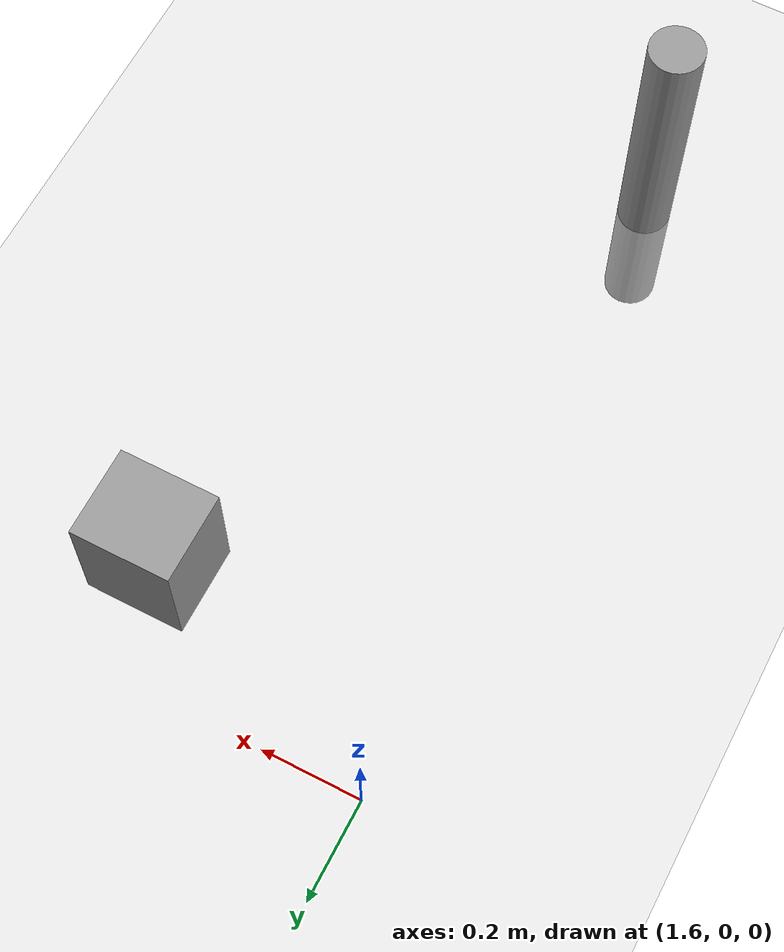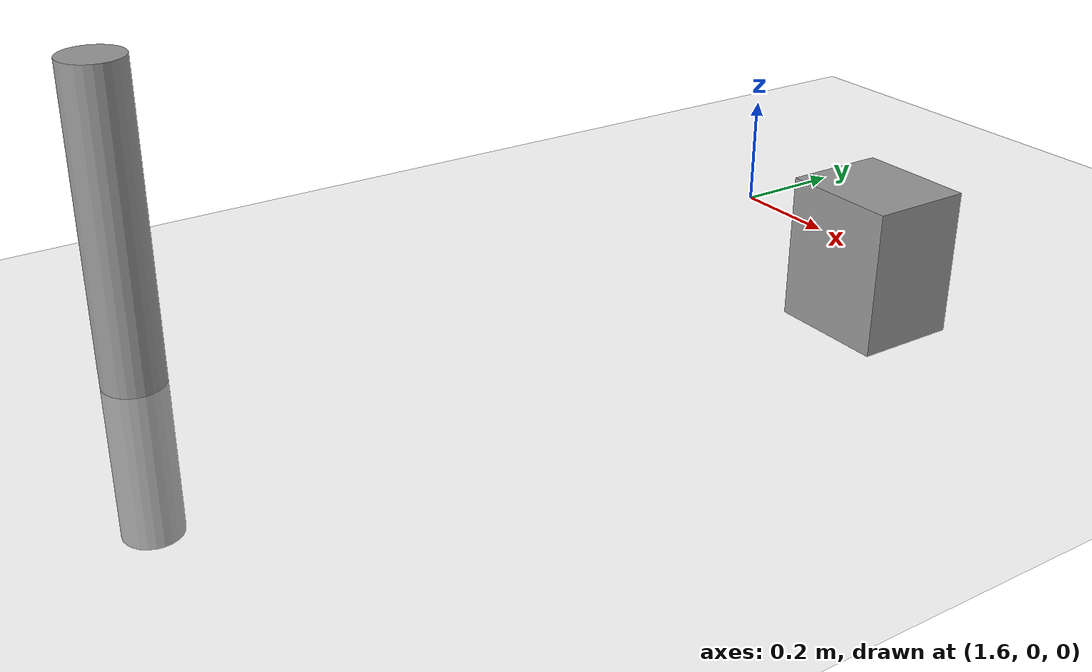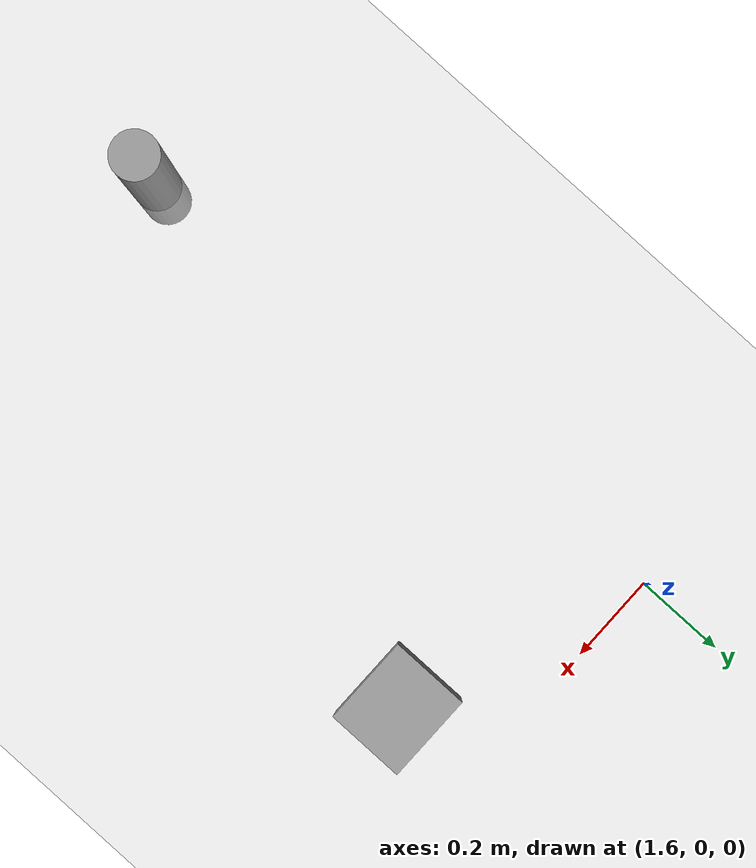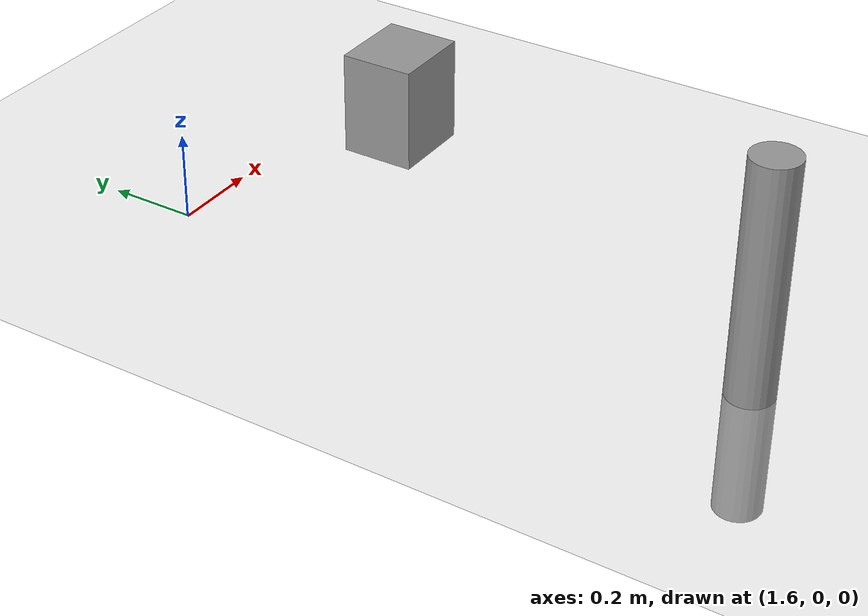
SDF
<sdf version="1.7">
 <world name="default">
  <light name="sun" type="directional">
   <pose>0 0 10 0 -0 0</pose>
   <diffuse>0.8 0.8 0.8 1</diffuse>
   <specular>0.2 0.2 0.2 1</specular>
   <attenuation>
    <range>1000</range>
    <constant>0.9</constant>
    <linear>0.01</linear>
    <quadratic>0.001</quadratic>
   </attenuation>
   <direction>-0.5 0.1 -0.9</direction>
   <spot><inner_angle>0</inner_angle><outer_angle>0</outer_angle><falloff>0</falloff></spot>
  </light>
  <model name="ground_plane">
   <static>1</static>
   <link name="link">
    <collision name="collision">
     <geometry><plane><normal>0 0 1</normal><size>100 100</size></plane></geometry>
     <surface>
      <contact><collide_bitmask>65535</collide_bitmask></contact>
      <friction><ode><mu>100</mu><mu2>50</mu2></ode></friction>
     </surface>
    </collision>
    <visual name="visual">
     <cast_shadows>0</cast_shadows>
     <geometry><plane><normal>0 0 1</normal><size>100 100</size></plane></geometry>
     <material>
      <script><uri>file://media/materials/scripts/gazebo.material</uri><name>Gazebo/Grey</name></script>
     </material>
    </visual>
   </link>
  </model>
  <gravity>0 0 -9.8</gravity>
  <magnetic_field>6e-06 2.3e-05 -4.2e-05</magnetic_field>
  <atmosphere type="adiabatic"/>
  <physics type="ode">
   <max_step_size>0.001</max_step_size>
   <real_time_factor>1</real_time_factor>
   <real_time_update_rate>1000</real_time_update_rate>
  </physics>
  <scene><ambient>0.4 0.4 0.4 1</ambient><background>0.7 0.7 0.7 1</background><shadows>1</shadows></scene>
  <spherical_coordinates>
   <surface_model>EARTH_WGS84</surface_model>
   <latitude_deg>0</latitude_deg>
   <longitude_deg>0</longitude_deg>
   <elevation>0</elevation>
   <heading_deg>0</heading_deg>
  </spherical_coordinates>
  <model name="random_shapes">
   <link name="link">
    <inertial>
     <mass>0.00841585</mass>
     <inertia>
      <ixx>6.34733e-05</ixx>
      <ixy>0</ixy>
      <ixz>0</ixz>
      <iyy>6.90793e-05</iyy>
      <iyz>0</iyz>
      <izz>4.85621e-05</izz>
     </inertia>
    </inertial>
    <visual name="visual">
     <geometry><box><size>0.196516 0.175 0.244704</size></box></geometry>
     <material>
      <script><name>Gazebo/Grey</name><uri>file://media/materials/scripts/gazebo.material</uri></script>
      <shader type="pixel"/>
     </material>
    </visual>
    <collision name="collision">
     <geometry><box><size>0.196516 0.175 0.244704</size></box></geometry>
     <surface>
      <friction>
       <ode><mu>1500</mu><mu2>1500</mu2><fdir1>0 0 0</fdir1><slip1>0</slip1><slip2>0</slip2></ode>
       <torsional>
        <coefficient>1</coefficient>
        <patch_radius>0</patch_radius>
        <surface_radius>0</surface_radius>
        <use_patch_radius>1</use_patch_radius>
        <ode><slip>0</slip></ode>
       </torsional>
      </friction>
      <bounce><restitution_coefficient>0</restitution_coefficient><threshold>1e+06</threshold></bounce>
      <contact>
       <collide_without_contact>0</collide_without_contact>
       <collide_without_contact_bitmask>1</collide_without_contact_bitmask>
       <collide_bitmask>1</collide_bitmask>
       <ode>
        <soft_cfm>0</soft_cfm>
        <soft_erp>0.2</soft_erp>
        <kp>1e+13</kp>
        <kd>1</kd>
        <max_vel>0.01</max_vel>
        <min_depth>0</min_depth>
       </ode>
       <bullet>
        <split_impulse>1</split_impulse>
        <split_impulse_penetration_threshold>-0.01</split_impulse_penetration_threshold>
        <soft_cfm>0</soft_cfm>
        <soft_erp>0.2</soft_erp>
        <kp>1e+13</kp>
        <kd>1</kd>
       </bullet>
      </contact>
     </surface>
    </collision>
   </link>
   <link name="link_0">
    <inertial>
     <mass>0.00872598</mass>
     <inertia>
      <ixx>0.000477359</ixx>
      <ixy>0</ixy>
      <ixz>0</ixz>
      <iyy>0.000477359</iyy>
      <iyz>0</iyz>
      <izz>1.18256e-05</izz>
     </inertia>
    </inertial>
    <pose>-0.465888 -1.10443 0 0 -1e-05 0</pose>
    <visual name="visual">
     <geometry><cylinder><radius>0.0520618</radius><length>0.805193</length></cylinder></geometry>
     <material>
      <lighting>1</lighting>
      <script><uri>file://media/materials/scripts/gazebo.material</uri><name>Gazebo/Grey</name></script>
      <shader type="pixel"/>
     </material>
    </visual>
    <collision name="collision">
     <geometry><cylinder><radius>0.052062</radius><length>0.805193</length></cylinder></geometry>
     <surface>
      <friction>
       <ode><mu>1500</mu><mu2>1500</mu2><fdir1>0 0 0</fdir1><slip1>0</slip1><slip2>0</slip2></ode>
       <torsional>
        <coefficient>1</coefficient>
        <patch_radius>0</patch_radius>
        <surface_radius>0</surface_radius>
        <use_patch_radius>1</use_patch_radius>
        <ode><slip>0</slip></ode>
       </torsional>
      </friction>
      <bounce><restitution_coefficient>0</restitution_coefficient><threshold>1e+06</threshold></bounce>
      <contact>
       <collide_without_contact>0</collide_without_contact>
       <collide_without_contact_bitmask>1</collide_without_contact_bitmask>
       <collide_bitmask>1</collide_bitmask>
       <ode>
        <soft_cfm>0</soft_cfm>
        <soft_erp>0.2</soft_erp>
        <kp>1e+13</kp>
        <kd>1</kd>
        <max_vel>0.01</max_vel>
        <min_depth>0</min_depth>
       </ode>
       <bullet>
        <split_impulse>1</split_impulse>
        <split_impulse_penetration_threshold>-0.01</split_impulse_penetration_threshold>
        <soft_cfm>0</soft_cfm>
        <soft_erp>0.2</soft_erp>
        <kp>1e+13</kp>
        <kd>1</kd>
       </bullet>
      </contact>
     </surface>
    </collision>
   </link>
   <static>0</static>
   <pose>2.13087 -0.213296 0.122351 3e-05 1.4e-05 -6e-06</pose>
  </model>
 </world>
</sdf>
